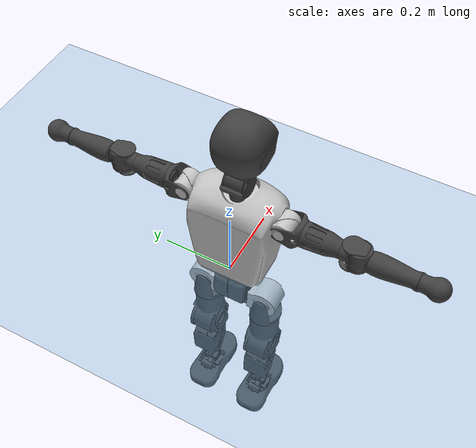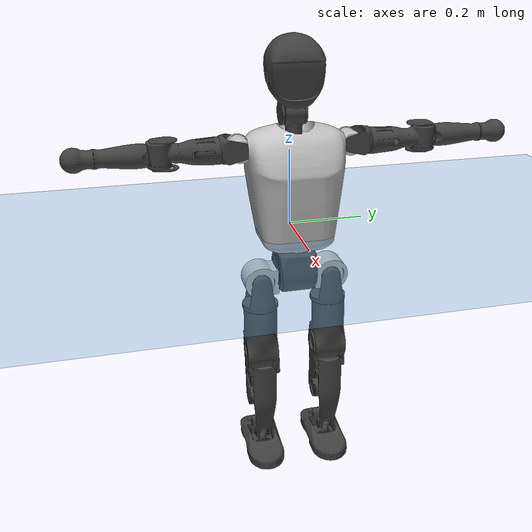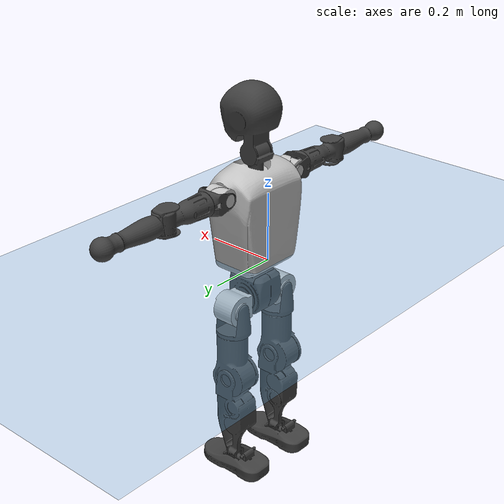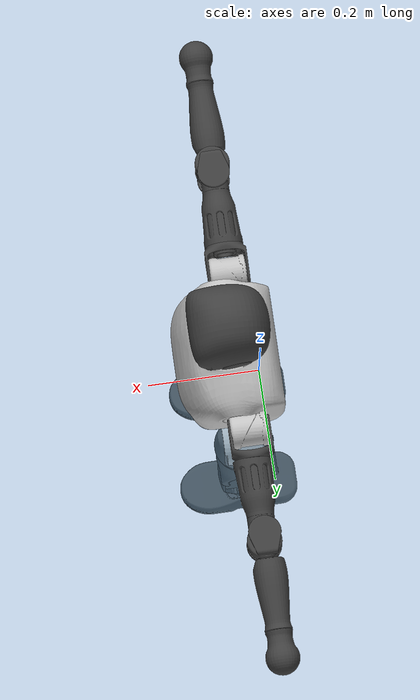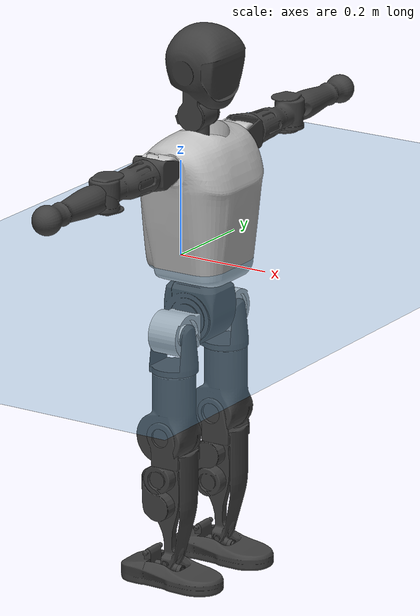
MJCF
<mujoco model="T1">
  <compiler angle="radian" assetdir="assets" balanceinertia="true" inertiafromgeom="false"/>

  <option timestep="0.005" density="1.2" viscosity="2e-05"/>

  <size nkey="1"/>

  <visual>
    <quality shadowsize="8192"/>
    <map shadowclip="0.5"/>
  </visual>

  <default>
    <default class="/">
      <joint armature="0.01" damping="0.01" frictionloss="0.1"/>
      <geom contype="0" conaffinity="0" group="1" solref="-1000 -80"/>
      <site size="0.01 0.005 0.005" group="5"/>
      <general forcelimited="true" biastype="affine" gainprm="25" biasprm="0 -25 -0.6"/>
      <default class="t1">
        <geom rgba="0.25 0.25 0.25 1"/>
        <default class="visual">
          <geom type="mesh" group="2"/>
        </default>
        <default class="collision">
          <geom group="3"/>
        </default>
        <default class="foot">
          <geom size="0.1115 0.05 0.015" type="box" condim="6" group="4" priority="1" solimp="0.015 1 0.015"/>
        </default>
        <default class="reward_collision_sphere">
          <geom group="5" rgba="1 0 0 1"/>
        </default>
      </default>
    </default>
  </default>

  <asset>
    <texture type="skybox" colorspace="auto" name="//unnamed_texture_0" builtin="gradient" rgb1="0.95 0.95 0.95" rgb2="0.95 0.95 0.95" width="100" height="600"/>
    <texture type="2d" colorspace="auto" name="texplane" builtin="checker" rgb1="0.345 0.575 0.748" rgb2="0.345 0.575 0.748" markrgb="1 1 1" width="512" height="512"/>
    <material name="MatPlane" class="/" texture="texplane" texuniform="true" texrepeat="2 2" specular="0.9"/>
    <mesh name="Trunk" class="/" file="Trunk.stl"/>
    <mesh name="H1" class="/" file="H1.stl"/>
    <mesh name="H2" class="/" file="H2.stl"/>
    <mesh name="AL1" class="/" file="AL1.stl"/>
    <mesh name="AL2" class="/" file="AL2.stl"/>
    <mesh name="AL3" class="/" file="AL3.stl"/>
    <mesh name="left_hand_link" class="/" file="left_hand_link.stl"/>
    <mesh name="AR1" class="/" file="AR1.stl"/>
    <mesh name="AR2" class="/" file="AR2.stl"/>
    <mesh name="AR3" class="/" file="AR3.stl"/>
    <mesh name="right_hand_link" class="/" file="right_hand_link.stl"/>
    <mesh name="Waist" class="/" file="Waist.stl"/>
    <mesh name="Hip_Pitch_Left" class="/" file="Hip_Pitch_Left.stl"/>
    <mesh name="Hip_Roll_Left" class="/" file="Hip_Roll_Left.stl"/>
    <mesh name="Hip_Yaw_Left" class="/" file="Hip_Yaw_Left.stl"/>
    <mesh name="Shank_Left" class="/" file="Shank_Left.stl"/>
    <mesh name="Ankle_Cross_Left" class="/" file="Ankle_Cross_Left.stl"/>
    <mesh name="left_foot_link" class="/" file="left_foot_link.stl"/>
    <mesh name="Hip_Pitch_Right" class="/" file="Hip_Pitch_Right.stl"/>
    <mesh name="Hip_Roll_Right" class="/" file="Hip_Roll_Right.stl"/>
    <mesh name="Hip_Yaw_Right" class="/" file="Hip_Yaw_Right.stl"/>
    <mesh name="Shank_Right" class="/" file="Shank_Right.stl"/>
    <mesh name="Ankle_Cross_Right" class="/" file="Ankle_Cross_Right.stl"/>
    <mesh name="right_foot_link" class="/" file="right_foot_link.stl"/>
  </asset>

  <worldbody>
    <geom name="floor" class="/" size="100 100 0.125" type="plane" group="0" material="MatPlane"/>
    <light name="toplight_shadow" class="/" pos="0 0 5" dir="0.0990148 0.0990148 -0.990148" type="directional" ambient="0.04 0.04 0.04" diffuse="0.55 0.55 0.55" specular="0.12 0.12 0.12"/>
    <light name="toplight_fill" class="/" pos="0 0 5" dir="0.0990148 0.0990148 -0.990148" type="directional" castshadow="false" ambient="0.04 0.04 0.04" diffuse="0.3 0.3 0.3" specular="0.08 0.08 0.08"/>
    <body name="trunk" childclass="t1" pos="-0.000748481 0.000921087 0.00281542" quat="1 0.000202468 -0.000404176 -0.0005597">
      <inertial pos="0.0364957 -0.00301027 0.10645" quat="0.999958 0.000111006 -0.00903324 0.00181576" mass="7.42827" diaginertia="0.0184382 0.0408992 0.0555471"/>
      <joint name="//unnamed_joint_0" type="free" armature="0" damping="0" frictionloss="0"/>
      <geom name="//unnamed_geom_1" class="visual" rgba="0.76 0.76 0.76 1" mesh="Trunk"/>
      <geom name="//unnamed_geom_2" class="collision" size="0.0650368 0.0867157 0.130074" pos="0.0432438 0 0.119891" type="box"/>
      <geom name="//unnamed_geom_3" class="reward_collision_sphere" size="0.0997231" pos="0.0432438 0 0.0999089"/>
      <geom name="//unnamed_geom_4" class="reward_collision_sphere" size="0.0130074" pos="0.0432438 0.0749405 0"/>
      <geom name="//unnamed_geom_5" class="reward_collision_sphere" size="0.0130074" pos="0.0432438 -0.0749405 0"/>
      <geom name="//unnamed_geom_6" class="reward_collision_sphere" size="0.0130074" pos="0.0432438 0.0943368 0.179836"/>
      <geom name="//unnamed_geom_7" class="reward_collision_sphere" size="0.0130074" pos="0.0432438 -0.0943368 0.179836"/>
      <site name="imu" pos="-0.00999075 0.00911697 -0.0104757" size="0.00867157"/>
      <camera name="track" pos="0 -1.76331 0" quat="0.707107 0.707107 0 0" mode="trackcom"/>
      <camera name="ego_camera" pos="0.0879291 0 0.419617" quat="-0.5 -0.5 0.5 0.5"/>
      <body name="H1" pos="0.044463 -8.82386e-05 0.241449" quat="0.999999 -0.000172111 -0.00048518 -0.000998137">
        <inertial pos="-0.00117365 -0.00250454 0.0584977" quat="0.76177 -0.0136418 -0.000569629 0.647703" mass="0.304331" diaginertia="4.67675e-05 0.000124088 0.000153337"/>
        <joint name="AAHead_yaw" pos="0 0 0" axis="-0.0021367 -0.0125132 0.999919" range="-1.5858 1.57167" armature="0.00964462" damping="0" frictionloss="0.0886166"/>
        <geom name="//unnamed_geom_8" class="visual" mesh="H1"/>
        <body name="H2" pos="0.000918438 -0.0029106 0.0615237" quat="0.999999 0.00101587 -0.000305966 0.000453464">
          <inertial pos="0.00506811 -0.000378197 0.0993531" quat="0.988309 0.106035 -0.0774155 -0.0775156" mass="0.412529" diaginertia="0.000397371 0.00103942 0.00178135"/>
          <joint name="Head_pitch" pos="0 0 0" axis="-0.00455444 -0.999895 0.0137313" stiffness="0.00919468" range="-1.21113 0.297518" armature="0.00944002" damping="0" frictionloss="0.0910255"/>
          <geom name="//unnamed_geom_9" class="visual" mesh="H2"/>
          <geom name="//unnamed_geom_10" class="collision" size="0.0693726" pos="0.0072073 0 0.1099"/>
          <geom name="//unnamed_geom_11" class="reward_collision_sphere" size="0.0780442" pos="0.0144146 0 0.0999089"/>
        </body>
      </body>
      <body name="AL1" pos="0.0423452 0.0967002 0.220042" quat="0.999999 0.000133245 3.47452e-05 0.0014187">
        <inertial pos="-0.00100923 0.0422376 -0.000145095" quat="0.505739 0.496765 -0.50481 0.492564" mass="0.341577" diaginertia="0.000274824 0.000676454 0.000285596"/>
        <joint name="Left_Shoulder_Pitch" pos="0 0 0" axis="-0.0038829 0.999982 0.00467438" range="-3.2685 1.24136" armature="0.00833695" damping="0.00452547" frictionloss="0.0747031"/>
        <geom name="//unnamed_geom_12" class="visual" rgba="0.76 0.76 0.76 1" mesh="AL1"/>
        <body name="AL2" pos="-0.00187456 0.0446408 -0.000124372" quat="1 0.00023198 8.13217e-06 -1.38632e-05">
          <inertial pos="0.00164965 0.0332431 0.00226011" quat="0.489989 0.509899 -0.489396 0.5103" mass="0.111381" diaginertia="8.02527e-05 0.000184887 0.000187529"/>
          <joint name="Left_Shoulder_Roll" pos="0 0 0" axis="-0.999999 0.000416536 -0.00126638" stiffness="0.00945069" range="-1.52916 1.78258" armature="0.00789742" damping="0" frictionloss="0.0856191"/>
          <geom name="//unnamed_geom_13" class="visual" mesh="AL2"/>
          <body name="AL3" pos="0.00350981 0.0549614 -0.00145238" quat="1 -0.000110536 0.00063952 0.000184281">
            <inertial pos="0.00251149 0.0752748 -1.55916e-05" quat="0.7087 0.705425 0.00597382 0.00919645" mass="0.663406" diaginertia="0.00238071 0.00695773 0.000597174"/>
            <joint name="Left_Elbow_Pitch" pos="0 0 0" axis="0.0015391 -0.999973 0.00724353" range="-2.23304 2.32512" armature="0.00810006" damping="0.0139352" frictionloss="0.0744102"/>
            <geom name="//unnamed_geom_14" class="visual" mesh="AL3"/>
            <geom name="//unnamed_geom_15" class="collision" size="0.0260147 0.0650368" pos="0 0.0440826 0" quat="0.707105 0.707108 0 0" type="cylinder"/>
            <geom name="//unnamed_geom_16" class="reward_collision_sphere" size="0.0312177"/>
            <body name="left_hand_link" pos="-0.00234942 0.13281 0.00231526" quat="0.999999 -0.000137969 -0.00048411 -0.000903929">
              <inertial pos="0.000874809 0.0960271 0.00281407" quat="0.707607 0.706606 5.96481e-06 -2.11919e-05" mass="0.214532" diaginertia="0.00165857 0.00450154 0.000217058"/>
              <joint name="Left_Elbow_Yaw" pos="0 0 0" axis="0.00388351 0.00908908 0.999951" range="-2.48586 -0.0154981" armature="0.00967069" damping="0.00730277" frictionloss="0.0752638"/>
              <geom name="//unnamed_geom_17" class="visual" mesh="left_hand_link"/>
              <geom name="//unnamed_geom_18" class="collision" size="0.0260147 0.0758763" pos="0 0.114615 0" quat="0.707105 0.707108 0 0" type="cylinder"/>
              <geom name="//unnamed_geom_19" class="reward_collision_sphere" size="0.0433579"/>
              <geom name="//unnamed_geom_20" class="reward_collision_sphere" size="0.0303505" pos="0 0.0969818 0"/>
              <geom name="//unnamed_geom_21" class="reward_collision_sphere" size="0.0303505" pos="0 0.189555 0"/>
            </body>
          </body>
        </body>
      </body>
      <body name="AR1" pos="0.0385388 -0.0896688 0.218426" quat="1 -0.000549466 0.000133305 0.000338751">
        <inertial pos="-0.00285092 -0.0385984 0.00271352" quat="0.49993 0.498662 -0.501392 0.500012" mass="0.353811" diaginertia="0.000256613 0.000664615 0.000296748"/>
        <joint name="Right_Shoulder_Pitch" pos="0 0 0" axis="0.000845303 -0.999994 -0.00333748" stiffness="0.00405857" range="-1.22498 3.30868" armature="0.00850834" damping="0.0118979" frictionloss="0.0743853"/>
        <geom name="//unnamed_geom_22" class="visual" rgba="0.76 0.76 0.76 1" mesh="AR1"/>
        <body name="AR2" pos="-0.000815386 -0.0412442 0.000495793" quat="1 -0.0001588 -0.000204196 0.000186531">
          <inertial pos="0.00383682 -0.0344081 0.002881" quat="0.512542 0.487507 -0.511534 0.487822" mass="0.105803" diaginertia="7.71551e-05 0.000189902 0.000181816"/>
          <joint name="Right_Shoulder_Roll" pos="0 0 0" axis="-0.999834 -0.0101315 0.0151714" range="-1.68887 1.60725" armature="0.00757358" damping="0.0195186" frictionloss="0.0834029"/>
          <geom name="//unnamed_geom_23" class="visual" mesh="AR2"/>
          <body name="AR3" pos="0.000749384 -0.0530504 -0.00169236" quat="1 -9.14168e-07 5.88778e-07 1.03061e-05">
            <inertial pos="-0.000666883 -0.0774288 0.00274114" quat="0.697866 0.716225 -0.00203488 0.00125694" mass="0.670449" diaginertia="0.00259104 0.0066185 0.000643789"/>
            <joint name="Right_Elbow_Pitch" pos="0 0 0" axis="-0.0105154 0.999935 -0.00438209" stiffness="0.000669959" range="-2.2168 2.2133" armature="0.0087311" damping="0.0210928" frictionloss="0.0868144"/>
            <geom name="//unnamed_geom_24" class="visual" mesh="AR3"/>
            <geom name="//unnamed_geom_25" class="collision" size="0.0260147 0.0650368" pos="0 -0.0440826 0" quat="0.707105 0.707108 0 0" type="cylinder"/>
            <geom name="//unnamed_geom_26" class="reward_collision_sphere" size="0.0312177"/>
            <body name="right_hand_link" pos="0.000200561 -0.130066 -0.000929064" quat="0.999999 0.000273798 -0.000640682 0.000816011">
              <inertial pos="0.000196942 -0.0959833 -0.00204296" quat="0.70923 0.70497 -0.00311987 0.000352028" mass="0.209095" diaginertia="0.00158403 0.00431715 0.00020561"/>
              <joint name="Right_Elbow_Yaw" pos="0 0 0" axis="7.78861e-05 0.000572524 1" stiffness="0.00194282" range="-0.0177353 2.44026" armature="0.00814686" damping="0" frictionloss="0.0989304"/>
              <geom name="//unnamed_geom_27" class="visual" mesh="right_hand_link"/>
              <geom name="//unnamed_geom_28" class="collision" size="0.0260147 0.0758763" pos="0 -0.114615 0" quat="0.707105 0.707108 0 0" type="cylinder"/>
              <geom name="//unnamed_geom_29" class="reward_collision_sphere" size="0.0433579"/>
              <geom name="//unnamed_geom_30" class="reward_collision_sphere" size="0.0303505" pos="0 -0.0969818 0"/>
              <geom name="//unnamed_geom_31" class="reward_collision_sphere" size="0.0303505" pos="0 -0.189555 0"/>
            </body>
          </body>
        </body>
      </body>
      <body name="Waist" pos="0.0459636 0.000353237 -0.114767" quat="1 0.000555969 0.000760043 0.000186081">
        <inertial pos="0.000215123 0.0021022 0.00726871" quat="0.984459 0.00242859 -0.175544 0.0042712" mass="1.64296" diaginertia="0.00100762 0.00276999 0.00478492"/>
        <joint name="Waist" pos="0 0 0" axis="0.00374163 0.00630576 0.999973" stiffness="0.00826713" range="-1.54875 1.54878" armature="0.00770438" damping="0.0201812" frictionloss="0.0851776"/>
        <geom name="//unnamed_geom_32" class="visual" mesh="Waist"/>
        <body name="Hip_Pitch_Left" pos="-0.00107688 0.0955332 0.00250463" quat="1 0.000691253 -0.00012733 4.39288e-07">
          <inertial pos="-0.00234723 -0.00470236 -0.0174872" quat="0.974996 0.221567 0.0169678 0.0015538" mass="0.668884" diaginertia="0.000344587 0.000757601 0.00124915"/>
          <joint name="Left_Hip_Pitch" pos="0 0 0" axis="-0.000945721 0.999994 -0.00327896" range="-1.81045 1.56374" armature="0.0073401" damping="0.015771" frictionloss="0.0943522"/>
          <geom name="//unnamed_geom_33" class="visual" rgba="0.76 0.76 0.76 1" mesh="Hip_Pitch_Left"/>
          <body name="Hip_Roll_Left" pos="0.00235912 -0.00302441 -0.0215462" quat="1 9.71698e-05 0.000154454 -2.22724e-05">
            <inertial pos="0.00350934 -0.00230458 -0.0556736" quat="0.70596 -0.00132518 -0.00410911 0.708239" mass="0.244002" diaginertia="0.000343425 0.000803639 0.000514567"/>
            <joint name="Left_Hip_Roll" pos="0 0 0" axis="-0.999993 0.000229451 -0.00363508" range="-1.56878 0.197689" armature="0.00977189" damping="0.0214697" frictionloss="0.0872076"/>
            <geom name="//unnamed_geom_34" class="visual" mesh="Hip_Roll_Left"/>
            <geom name="//unnamed_geom_35" class="reward_collision_sphere" size="0.0476937"/>
            <body name="Hip_Yaw_Left" pos="0.000507443 0.00211793 -0.0798964" quat="1 -0.000404684 -0.000190609 -0.000230794">
              <inertial pos="-0.00562688 0.000770848 -0.0870432" quat="0.698943 -0.0346325 -0.0305057 0.713687" mass="1.4478" diaginertia="0.00511652 0.0137817 0.00261043"/>
              <joint name="Left_Hip_Yaw" pos="0 0 0" axis="0.000611199 -0.00236908 -0.999997" stiffness="0.00631101" range="-0.985119 1.01183" armature="0.00867098" damping="0" frictionloss="0.0988689"/>
              <geom name="//unnamed_geom_36" class="visual" mesh="Hip_Yaw_Left"/>
              <geom name="//unnamed_geom_37" class="collision" size="0.0433579 0.0693726" type="cylinder"/>
              <body name="Shank_Left" pos="-0.00963324 -0.00184524 -0.137206" quat="0.999999 0.00100965 -0.00106244 -1.05121e-05">
                <inertial pos="-0.00377822 -0.00231792 -0.1225" quat="0.997576 -0.00170296 -0.0131157 0.068315" mass="1.13434" diaginertia="0.00674639 0.0189867 0.00184863"/>
                <joint name="Left_Knee_Pitch" pos="0 0 0" axis="-0.00932965 0.999872 -0.0129817" range="-0.00350428 2.28908" armature="0.00998811" damping="0" frictionloss="0.0871127"/>
                <geom name="//unnamed_geom_38" class="visual" mesh="Shank_Left"/>
                <geom name="//unnamed_geom_39" class="collision" size="0.0433579 0.0650368" pos="0 0 -0.119891" type="cylinder"/>
                <geom name="//unnamed_geom_40" class="reward_collision_sphere" size="0.0563652"/>
                <body name="Ankle_Cross_Left" pos="0.00237802 -0.00323295 -0.28052" quat="0.999999 0.000991461 0.000234296 0.000519493">
                  <inertial pos="-0.00154863 -0.000803817 -0.00700148" quat="0.446544 0.553215 0.555994 0.430607" mass="0.0461552" diaginertia="5.85723e-06 1.36999e-05 1.13545e-05"/>
                  <joint name="Left_Ankle_Pitch" pos="0 0 0" axis="0.000728006 0.999999 0.00117493" stiffness="0.0085085" range="-0.905101 0.388529" armature="0.00990627" damping="0.0054272" frictionloss="0.0983987"/>
                  <geom name="//unnamed_geom_41" class="visual" mesh="Ankle_Cross_Left"/>
                  <body name="left_foot_link" pos="-0.00311567 -0.00248518 -0.0144796" quat="1 -0.000377713 -0.000849576 1.83848e-06">
                    <inertial pos="-0.000706023 0.000328956 -0.0101464" quat="-0.010515 0.620314 0.00902328 0.784231" mass="0.454757" diaginertia="0.00051687 0.00127855 0.00223791"/>
                    <joint name="Left_Ankle_Roll" pos="0 0 0" axis="-0.999933 -0.00983603 0.00608045" stiffness="0.00627211" range="-0.439992 0.474072" armature="0.00870613" damping="0.00947118" frictionloss="0.0906734"/>
                    <geom name="//unnamed_geom_42" class="visual" mesh="left_foot_link"/>
                    <geom name="left_foot" class="foot" size="0.102467 0.0412318 0.013389" pos="0.0072073 0 -0.0149863"/>
                    <geom name="//unnamed_geom_44" class="reward_collision_sphere" size="0.0450922" pos="0.0072073 0 -0.0149863"/>
                    <geom name="//unnamed_geom_45" class="reward_collision_sphere" size="0.0260147" pos="0.0684694 -0.020278 -0.0149863"/>
                    <geom name="//unnamed_geom_46" class="reward_collision_sphere" size="0.0260147" pos="-0.0504511 -0.020278 -0.0149863"/>
                    <site name="left_foot" class="foot" pos="0.0072073 0 -0.0149863" size="0.00867157"/>
                  </body>
                </body>
              </body>
            </body>
          </body>
        </body>
        <body name="Hip_Pitch_Right" pos="-0.00137915 -0.0938216 -0.000725942" quat="1 -0.000687811 -0.000568021 0.000358808">
          <inertial pos="-0.00135017 0.00640493 -0.0200202" quat="0.971614 -0.236033 0.0158965 -0.00159336" mass="0.639471" diaginertia="0.000343852 0.00078854 0.00120129"/>
          <joint name="Right_Hip_Pitch" pos="0 0 0" axis="-0.0033636 -0.999988 -0.003613" range="-1.58705 1.74599" armature="0.00934662" damping="0.0090571" frictionloss="0.0888865"/>
          <geom name="//unnamed_geom_47" class="visual" rgba="0.76 0.76 0.76 1" mesh="Hip_Pitch_Right"/>
          <body name="Hip_Roll_Right" pos="0.00223547 -0.000628091 -0.0217746" quat="1 -9.21008e-05 -0.000237212 -0.000283339">
            <inertial pos="0.00179255 0.00248346 -0.0535451" quat="0.71509 -0.0101897 -0.0130131 0.698837" mass="0.242746" diaginertia="0.000337091 0.000801476 0.000497158"/>
            <joint name="Right_Hip_Roll" pos="0 0 0" axis="-0.999937 0.0049057 0.0101227" stiffness="0.0114041" range="-0.189191 1.56062" armature="0.00741973" damping="0.00798979" frictionloss="0.0890611"/>
            <geom name="//unnamed_geom_48" class="visual" mesh="Hip_Roll_Right"/>
            <geom name="//unnamed_geom_49" class="reward_collision_sphere" size="0.0476937"/>
            <body name="Hip_Yaw_Right" pos="-0.00250834 0.000673833 -0.0816175" quat="1 7.56128e-06 0.000503974 -0.000122959">
              <inertial pos="-0.00797396 0.000134555 -0.0907155" quat="0.713856 -0.031939 -0.0200957 0.699275" mass="1.45531" diaginertia="0.0049633 0.0132668 0.00253898"/>
              <joint name="Right_Hip_Yaw" pos="0 0 0" axis="0.0023614 -0.000905008 -0.999997" range="-0.954571 0.949073" armature="0.00821864" damping="0" frictionloss="0.088096"/>
              <geom name="//unnamed_geom_50" class="visual" mesh="Hip_Yaw_Right"/>
              <geom name="//unnamed_geom_51" class="collision" size="0.0433579 0.0693726" type="cylinder"/>
              <body name="Shank_Right" pos="-0.0086253 0.00202817 -0.13077" quat="1 -7.84877e-06 -8.33779e-06 -1.01107e-05">
                <inertial pos="-0.00310476 -1.96681e-05 -0.124647" quat="0.999265 0.00296854 -0.0319628 -0.0209662" mass="1.08817" diaginertia="0.00660256 0.018568 0.00189801"/>
                <joint name="Right_Knee_Pitch" pos="0 0 0" axis="0.00221279 -0.999974 -0.00686323" range="-2.33528 -0.011678" armature="0.00978825" damping="0" frictionloss="0.0987803"/>
                <geom name="//unnamed_geom_52" class="visual" mesh="Shank_Right"/>
                <geom name="//unnamed_geom_53" class="collision" size="0.0433579 0.0650368" pos="0 0 -0.119891" type="cylinder"/>
                <geom name="//unnamed_geom_54" class="reward_collision_sphere" size="0.0563652"/>
                <body name="Ankle_Cross_Right" pos="-0.00231271 -0.00220371 -0.278987" quat="0.999999 0.000147636 -0.00056737 -0.000830885">
                  <inertial pos="-0.00252483 0.000339793 -0.00713993" quat="0.443544 0.551117 0.55098 0.442673" mass="0.0471634" diaginertia="5.45073e-06 1.35455e-05 1.10487e-05"/>
                  <joint name="Right_Ankle_Pitch" pos="0 0 0" axis="-0.00296219 -0.999989 0.00372993" stiffness="0.000815714" range="-0.397062 0.903606" armature="0.00908304" damping="0.0215381" frictionloss="0.0858612"/>
                  <geom name="//unnamed_geom_55" class="visual" mesh="Ankle_Cross_Right"/>
                  <body name="right_foot_link" pos="0.000396118 -0.00161488 -0.0142415" quat="0.999999 0.000948615 0.00038066 -0.000928115">
                    <inertial pos="-0.00288834 0.000432222 -0.00879841" quat="0.000887584 0.617691 0.00269295 0.786416" mass="0.447454" diaginertia="0.000513069 0.00122845 0.00214495"/>
                    <joint name="Right_Ankle_Roll" pos="0 0 0" axis="-0.999992 0.0010704 -0.00379354" stiffness="0.00791848" range="-0.386364 0.392093" armature="0.00908806" damping="0.00368747" frictionloss="0.0870081"/>
                    <geom name="//unnamed_geom_56" class="visual" mesh="right_foot_link"/>
                    <geom name="right_foot" class="foot" size="0.0953267 0.0422729 0.0134803" pos="0.0072073 0 -0.0149863"/>
                    <geom name="//unnamed_geom_58" class="reward_collision_sphere" size="0.0346863"/>
                    <geom name="//unnamed_geom_59" class="reward_collision_sphere" size="0.0260147" pos="0.0072073 0 -0.0149863"/>
                    <geom name="//unnamed_geom_60" class="reward_collision_sphere" size="0.0260147" pos="0.0684694 0.020278 -0.0149863"/>
                    <geom name="//unnamed_geom_61" class="reward_collision_sphere" size="0.0260147" pos="-0.0504511 0.020278 -0.0149863"/>
                    <site name="right_foot" class="foot" pos="0.0072073 0 -0.0149863" size="0.00867157"/>
                  </body>
                </body>
              </body>
            </body>
          </body>
        </body>
      </body>
    </body>
  </worldbody>

  <contact>
    <pair class="/" geom1="floor" geom2="left_foot" name="//unnamed_contact_0"/>
    <pair class="/" geom1="floor" geom2="right_foot" name="//unnamed_contact_1"/>
  </contact>

  <actuator>
    <general name="AAHead_yaw" class="/" joint="AAHead_yaw" forcerange="-5.86227 5.86227" gainprm="20.6183" biasprm="0 -20.6183 -0.478989"/>
    <general name="Head_pitch" class="/" joint="Head_pitch" forcerange="-6.12353 6.12353" gainprm="20.6183" biasprm="0 -20.6183 -0.478989"/>
    <general name="Left_Shoulder_Pitch" class="/" joint="Left_Shoulder_Pitch" forcerange="-14.9982 14.9982" gainprm="20.6183" biasprm="0 -20.6183 -0.478989"/>
    <general name="Left_Shoulder_Roll" class="/" joint="Left_Shoulder_Roll" forcerange="-14.0694 14.0694" gainprm="20.6183" biasprm="0 -20.6183 -0.478989"/>
    <general name="Left_Elbow_Pitch" class="/" joint="Left_Elbow_Pitch" forcerange="-14.6165 14.6165" gainprm="20.6183" biasprm="0 -20.6183 -0.478989"/>
    <general name="Left_Elbow_Yaw" class="/" joint="Left_Elbow_Yaw" forcerange="-17.0485 17.0485" gainprm="20.6183" biasprm="0 -20.6183 -0.478989"/>
    <general name="Right_Shoulder_Pitch" class="/" joint="Right_Shoulder_Pitch" forcerange="-16.9434 16.9434" gainprm="20.6183" biasprm="0 -20.6183 -0.478989"/>
    <general name="Right_Shoulder_Roll" class="/" joint="Right_Shoulder_Roll" forcerange="-14.5639 14.5639" gainprm="20.6183" biasprm="0 -20.6183 -0.478989"/>
    <general name="Right_Elbow_Pitch" class="/" joint="Right_Elbow_Pitch" forcerange="-15.6133 15.6133" gainprm="20.6183" biasprm="0 -20.6183 -0.478989"/>
    <general name="Right_Elbow_Yaw" class="/" joint="Right_Elbow_Yaw" forcerange="-15.8138 15.8138" gainprm="20.6183" biasprm="0 -20.6183 -0.478989"/>
    <general name="Waist" class="/" joint="Waist" forcerange="-26.7531 26.7531" gainprm="20.6183" biasprm="0 -20.6183 -0.478989"/>
    <general name="Left_Hip_Pitch" class="/" joint="Left_Hip_Pitch" forcerange="-36.4179 36.4179" gainprm="20.6183" biasprm="0 -20.6183 -0.478989"/>
    <general name="Left_Hip_Roll" class="/" joint="Left_Hip_Roll" forcerange="-28.1665 28.1665" gainprm="20.6183" biasprm="0 -20.6183 -0.478989"/>
    <general name="Left_Hip_Yaw" class="/" joint="Left_Hip_Yaw" forcerange="-24.3659 24.3659" gainprm="20.6183" biasprm="0 -20.6183 -0.478989"/>
    <general name="Left_Knee_Pitch" class="/" joint="Left_Knee_Pitch" forcerange="-48.5462 48.5462" gainprm="20.6183" biasprm="0 -20.6183 -0.478989"/>
    <general name="Left_Ankle_Pitch" class="/" joint="Left_Ankle_Pitch" forcerange="-17.6209 17.6209" gainprm="20.6183" biasprm="0 -20.6183 -0.478989"/>
    <general name="Left_Ankle_Roll" class="/" joint="Left_Ankle_Roll" forcerange="-13.1043 13.1043" gainprm="20.6183" biasprm="0 -20.6183 -0.478989"/>
    <general name="Right_Hip_Pitch" class="/" joint="Right_Hip_Pitch" forcerange="-40.4687 40.4687" gainprm="20.6183" biasprm="0 -20.6183 -0.478989"/>
    <general name="Right_Hip_Roll" class="/" joint="Right_Hip_Roll" forcerange="-25.5533 25.5533" gainprm="20.6183" biasprm="0 -20.6183 -0.478989"/>
    <general name="Right_Hip_Yaw" class="/" joint="Right_Hip_Yaw" forcerange="-28.447 28.447" gainprm="20.6183" biasprm="0 -20.6183 -0.478989"/>
    <general name="Right_Knee_Pitch" class="/" joint="Right_Knee_Pitch" forcerange="-52.2631 52.2631" gainprm="20.6183" biasprm="0 -20.6183 -0.478989"/>
    <general name="Right_Ankle_Pitch" class="/" joint="Right_Ankle_Pitch" forcerange="-15.692 15.692" gainprm="20.6183" biasprm="0 -20.6183 -0.478989"/>
    <general name="Right_Ankle_Roll" class="/" joint="Right_Ankle_Roll" forcerange="-12.9993 12.9993" gainprm="20.6183" biasprm="0 -20.6183 -0.478989"/>
  </actuator>

  <sensor>
    <gyro site="imu" name="imu_angular_velocity"/>
    <velocimeter site="imu" name="imu_linear_velocity"/>
    <framelinvel objtype="site" objname="left_foot" name="left_foot_global_linear_velocity"/>
    <framelinvel objtype="site" objname="right_foot" name="right_foot_global_linear_velocity"/>
  </sensor>

  <keyframe>
    <key name="home" qpos="0 0 0.6385 1 0 0 0 0 0 0 1.4 0 -0.4 0 -1.4 0 0.4 0 -0.4 0 0 0.8 -0.4 0 0.4 0 0 -0.8 0.4 0"/>
  </keyframe>
</mujoco>
